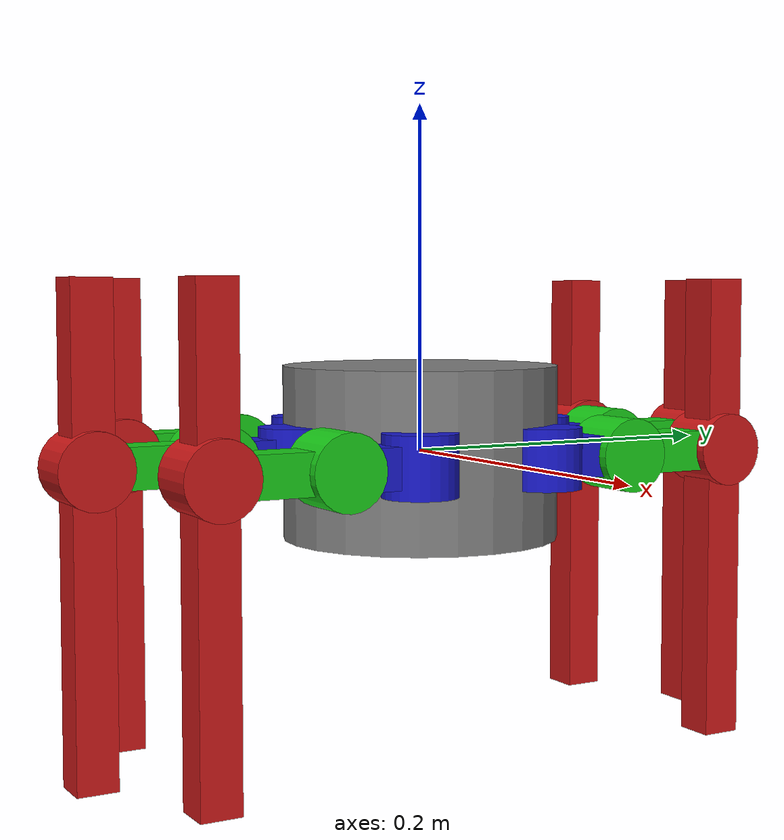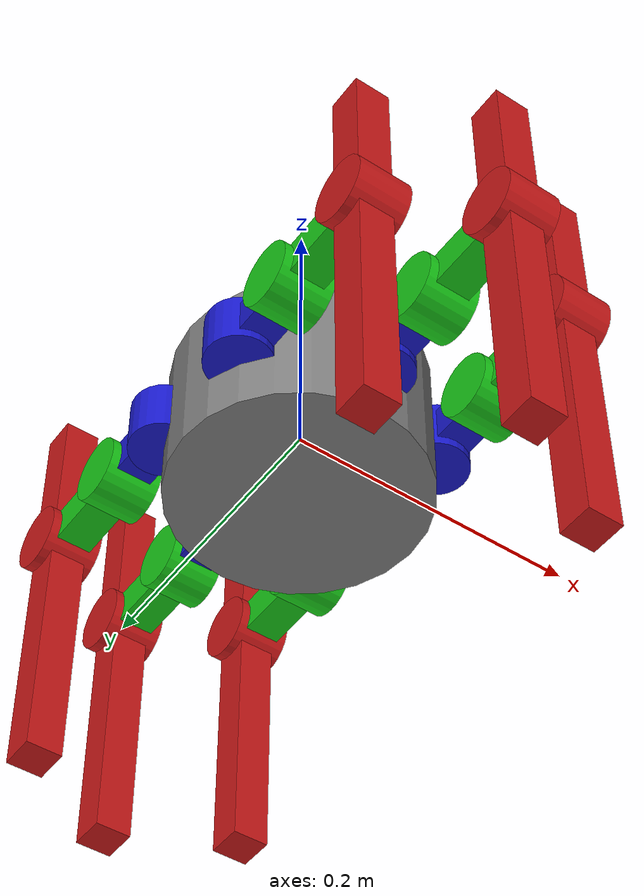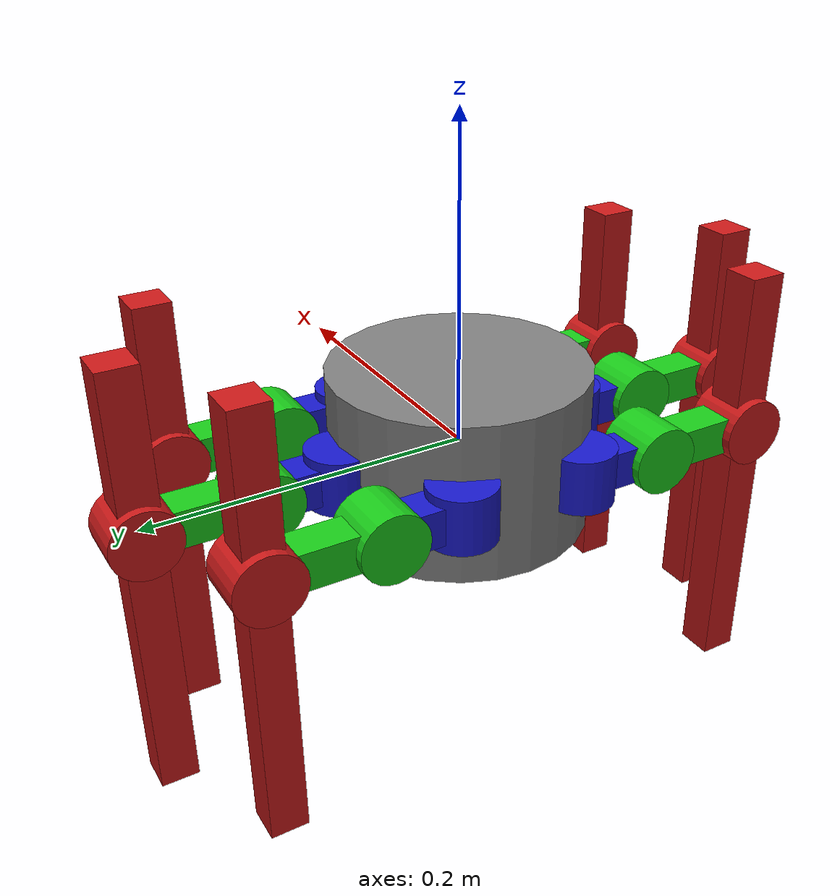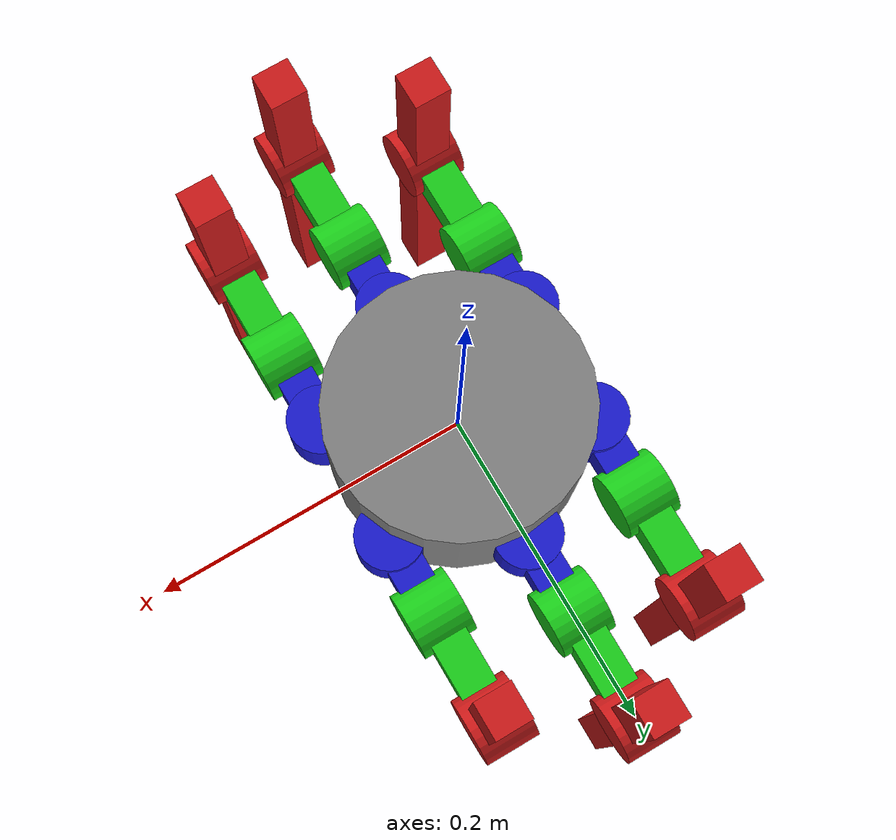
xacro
<?xml version="1.0"?>
<robot name="hexer_v_1_0" xmlns:xacro="http://www.ros.org/wiki/xacro">

    <xacro:property name="radius_base" value="0.08" />
    <xacro:property name="base_heigth" value="0.1" />
    <xacro:property name="length_coxa" value="0.05" />
    <xacro:property name="length_femur" value="0.07" />
    <xacro:property name="length_tibia" value="0.27" />
    <xacro:property name="radius_servo" value="0.021" />
    <xacro:property name="leg_width" value="0.023" />
    <xacro:property name="limit_servo_down" value="${-pi / 2.0}" />
    <xacro:property name="limit_servo_up" value="${pi / 2.0}" />

    <material name="grey">
        <color rgba="0.5 0.5 0.5 1" />
    </material>
    <material name="coxa">
        <color rgba="0.1 0.1 0.8 1" />
    </material>
    <material name="femur">
        <color rgba="0.1 0.8 0.1 1" />
    </material>
    <material name="tibia">
        <color rgba="0.8 0.1 0.1 1" />
    </material>

    <link name="base_link">
        <visual>
            <geometry>
                <cylinder radius="${radius_base}" length="${base_heigth}" />
            </geometry>
            <origin xyz="0 0 0" rpy="0 0 0" />

            <material name="grey" />
        </visual>
    </link>

    <link name="ground" />
    <joint name="ground_base_link" type="fixed">
        <parent link="base_link" />
        <child link="ground" />
        <origin xyz="0 0 ${-(length_tibia - 0.1)}" rpy="0 0 0" />
    </joint>

    <xacro:macro name="leg" params="prefix origin_x origin_y origin_z direction">
        <link name="${prefix}_coxa_servo">
            <visual>
                <geometry>
                    <cylinder radius="${radius_servo}" length="${leg_width + (leg_width / 2.0)}" />
                </geometry>
                <origin xyz="0 0 0" rpy="0 0 0" />
                <material name="coxa" />
            </visual>
        </link>
        <link name="${prefix}_coxa">
            <visual>
                <geometry>
                    <box size="${length_coxa} ${leg_width} ${leg_width}" />
                </geometry>
                <origin xyz="0 0 0" rpy="0 0 0" />
                <material name="coxa" />
            </visual>
        </link>
        <link name="${prefix}_femur_servo">
            <visual>
                <geometry>
                    <cylinder radius="${radius_servo}" length="${leg_width + (leg_width / 2.0)}" />
                </geometry>
                <origin xyz="0 0 0" rpy="0 0 0" />
                <material name="femur" />
            </visual>
        </link>
        <link name="${prefix}_femur">
            <visual>
                <geometry>
                    <box size="${length_femur} ${leg_width} ${leg_width}" />
                </geometry>
                <origin xyz="0 0 0" rpy="0 0 0" />
                <material name="femur" />
            </visual>
        </link>
        <link name="${prefix}_tibia_servo">
            <visual>
                <geometry>
                    <cylinder radius="${radius_servo}" length="${leg_width + (leg_width / 2.0)}" />
                </geometry>
                <origin xyz="0 0 0" rpy="0 0 0" />
                <material name="tibia" />
            </visual>
        </link>
        <link name="${prefix}_tibia">
            <visual>
                <geometry>
                    <box size="${length_tibia} ${leg_width} ${leg_width}" />
                </geometry>
                <origin xyz="0 0 0" rpy="0 0 0" />
                <material name="tibia" />
            </visual>
        </link>

        <joint name="${prefix}_coxa_servo_base_joint" type="revolute">
            <parent link="base_link" />
            <child link="${prefix}_coxa_servo" />
            <origin xyz="${origin_x} ${origin_y} ${origin_z}" rpy="${direction} ${direction} ${pi / 2.0}" />
            <axis xyz="0 0 1" />
            <limit lower="${limit_servo_down}" upper="${limit_servo_up}" velocity="100" effort="100" />
        </joint>
        <joint name="${prefix}_coxa_coxa_servo_joint" type="fixed">
            <parent link="${prefix}_coxa_servo" />
            <child link="${prefix}_coxa" />
            <origin xyz="${length_coxa / 2.0} 0 0" rpy="0 0 0" />
        </joint>
        <joint name="${prefix}_femur_servo_coxa" type="revolute">
            <parent link="${prefix}_coxa" />
            <child link="${prefix}_femur_servo" />
            <origin xyz="${(length_coxa / 2.0)} 0 0" rpy="${pi / 2.0} 0 0" />
            <axis xyz="0 0 1" />
            <limit lower="${limit_servo_down}" upper="${limit_servo_up}" velocity="100" effort="100" />
        </joint>
        <joint name="${prefix}_femur_femur_servo_joint" type="fixed">
            <parent link="${prefix}_femur_servo" />
            <child link="${prefix}_femur" />
            <origin xyz="${length_femur / 2.0} 0 0" rpy="0 0 0" />
        </joint>
        <joint name="${prefix}_tibia_servo_femur_joint" type="revolute">
            <parent link="${prefix}_femur" />
            <child link="${prefix}_tibia_servo" />
            <origin xyz="${length_femur / 2.0} 0 0" rpy="0 0 0" />
            <axis xyz="0 0 1" />
            <limit lower="${limit_servo_down}" upper="${limit_servo_up}" velocity="100" effort="100" />
        </joint>
        <joint name="${prefix}_tibia_tibia_servo_joint" type="fixed">
            <parent link="${prefix}_tibia_servo" />
            <child link="${prefix}_tibia" />
            <origin xyz="0 -0.035 0" rpy="0 0 ${pi/ 2.0}" />
        </joint>

    </xacro:macro>

    <xacro:leg prefix="right_up"  origin_x="0.07" origin_y="0.04" origin_z="0" direction="0" />
    <xacro:leg prefix="right_mid" origin_x="0" origin_y="0.08" origin_z="0" direction="0"  />
    <xacro:leg prefix="right_down" origin_x="-0.07" origin_y="0.04" origin_z="0" direction="0" />

    <xacro:leg prefix="left_up" origin_x="0.07" origin_y="-0.04" origin_z="0"  direction="${pi}" />
    <xacro:leg prefix="left_mid" origin_x="0" origin_y="-0.08" origin_z="0"  direction="${pi}" />
    <xacro:leg prefix="left_down" origin_x="-0.07" origin_y="-0.04" origin_z="0"  direction="${pi}" />

</robot>
